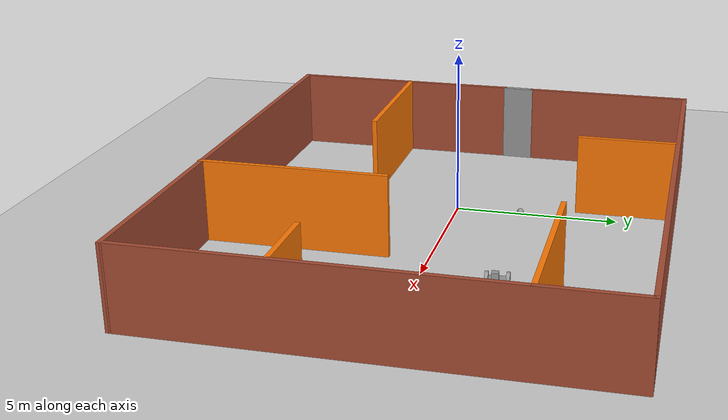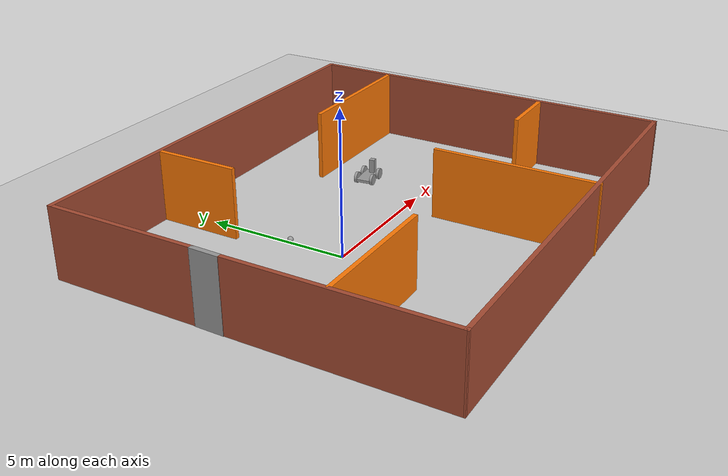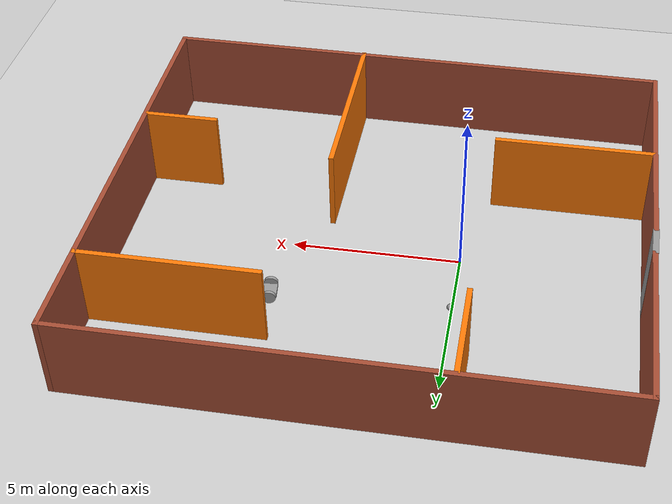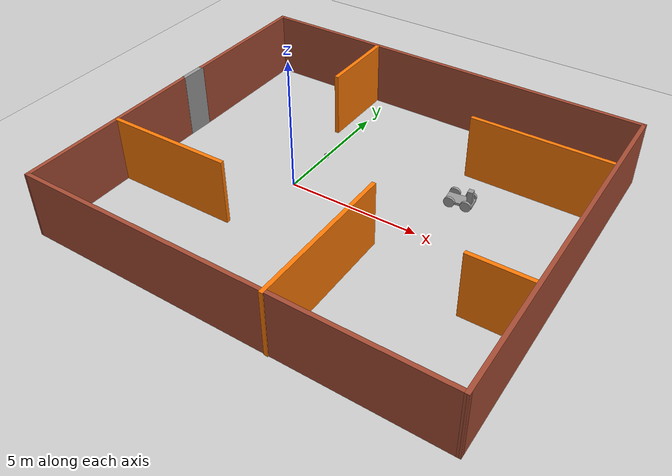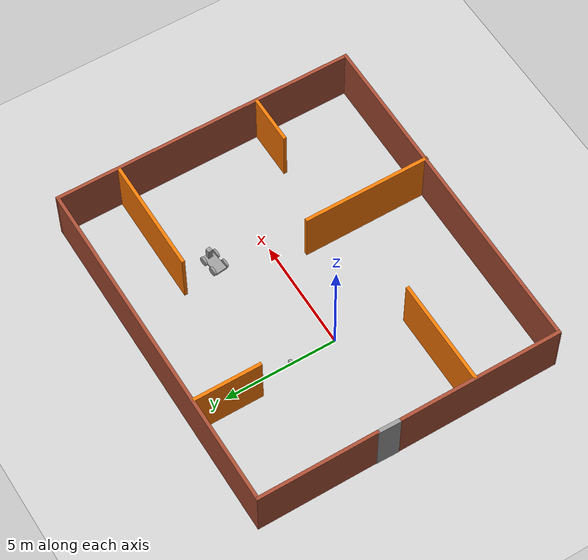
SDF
<sdf version="1.6">
 <world name="default">
  <model name="ground_plane">
   <static>1</static>
   <link name="link">
    <collision name="collision">
     <geometry><plane><normal>0 0 1</normal><size>100 100</size></plane></geometry>
     <surface>
      <contact><collide_bitmask>65535</collide_bitmask></contact>
      <friction><ode><mu>100</mu><mu2>50</mu2></ode></friction>
     </surface>
    </collision>
    <visual name="visual">
     <cast_shadows>0</cast_shadows>
     <geometry><plane><normal>0 0 1</normal><size>100 100</size></plane></geometry>
     <material>
      <script><uri>file://media/materials/scripts/gazebo.material</uri><name>Gazebo/Grey</name></script>
     </material>
    </visual>
   </link>
  </model>
  <model name="robot2">
   <plugin name="modelpush" filename="libmodelpush.so"/>
   <link name="link_0">
    <pose>-0.505429 -0.212278 0.058001 0 -0 0</pose>
    <inertial>
     <mass>1</mass>
     <inertia>
      <ixx>0.166667</ixx>
      <ixy>0</ixy>
      <ixz>0</ixz>
      <iyy>0.166667</iyy>
      <iyz>0</iyz>
      <izz>0.166667</izz>
     </inertia>
    </inertial>
    <visual name="visual">
     <geometry><box><size>1 0.5 0.1</size></box></geometry>
     <material>
      <lighting>1</lighting>
      <script><uri>file://media/materials/scripts/gazebo.material</uri><name>Gazebo/Grey</name></script>
      <shader type="pixel"><normal_map>__default__</normal_map></shader>
      <ambient>0.3 0.3 0.3 1</ambient>
      <diffuse>0.7 0.7 0.7 1</diffuse>
      <specular>0.01 0.01 0.01 1</specular>
      <emissive>0 0 0 1</emissive>
     </material>
    </visual>
    <collision name="collision">
     <geometry><box><size>1 0.5 0.1</size></box></geometry>
     <surface>
      <friction>
       <ode><mu>1</mu><mu2>1</mu2><fdir1>0 0 0</fdir1><slip1>0</slip1><slip2>0</slip2></ode>
       <torsional>
        <coefficient>1</coefficient>
        <patch_radius>0</patch_radius>
        <surface_radius>0</surface_radius>
        <use_patch_radius>1</use_patch_radius>
        <ode><slip>0</slip></ode>
       </torsional>
      </friction>
      <bounce><restitution_coefficient>0</restitution_coefficient><threshold>1e+06</threshold></bounce>
      <contact>
       <collide_without_contact>0</collide_without_contact>
       <collide_without_contact_bitmask>1</collide_without_contact_bitmask>
       <collide_bitmask>1</collide_bitmask>
       <ode>
        <soft_cfm>0</soft_cfm>
        <soft_erp>0.2</soft_erp>
        <kp>1e+13</kp>
        <kd>1</kd>
        <max_vel>0.01</max_vel>
        <min_depth>0</min_depth>
       </ode>
       <bullet>
        <split_impulse>1</split_impulse>
        <split_impulse_penetration_threshold>-0.01</split_impulse_penetration_threshold>
        <soft_cfm>0</soft_cfm>
        <soft_erp>0.2</soft_erp>
        <kp>1e+13</kp>
        <kd>1</kd>
       </bullet>
      </contact>
     </surface>
    </collision>
   </link>
   <link name="link_1">
    <pose>-0.805429 -0.512297 0.102996 1.5707 -0 0</pose>
    <inertial>
     <mass>1</mass>
     <inertia><ixx>0.145833</ixx><ixy>0</ixy><ixz>0</ixz><iyy>0.145833</iyy><iyz>0</iyz><izz>0.125</izz></inertia>
    </inertial>
    <visual name="visual">
     <geometry><cylinder><radius>0.2</radius><length>0.1</length></cylinder></geometry>
     <material>
      <lighting>1</lighting>
      <script><uri>file://media/materials/scripts/gazebo.material</uri><name>Gazebo/Grey</name></script>
      <shader type="pixel"><normal_map>__default__</normal_map></shader>
      <ambient>0.3 0.3 0.3 1</ambient>
      <diffuse>0.7 0.7 0.7 1</diffuse>
      <specular>0.01 0.01 0.01 1</specular>
      <emissive>0 0 0 1</emissive>
     </material>
    </visual>
    <collision name="collision">
     <geometry><cylinder><radius>0.2</radius><length>0.1</length></cylinder></geometry>
     <surface>
      <friction>
       <ode><mu>1</mu><mu2>1</mu2><fdir1>0 0 0</fdir1><slip1>0</slip1><slip2>0</slip2></ode>
       <torsional>
        <coefficient>1</coefficient>
        <patch_radius>0</patch_radius>
        <surface_radius>0</surface_radius>
        <use_patch_radius>1</use_patch_radius>
        <ode><slip>0</slip></ode>
       </torsional>
      </friction>
      <bounce><restitution_coefficient>0</restitution_coefficient><threshold>1e+06</threshold></bounce>
      <contact>
       <collide_without_contact>0</collide_without_contact>
       <collide_without_contact_bitmask>1</collide_without_contact_bitmask>
       <collide_bitmask>1</collide_bitmask>
       <ode>
        <soft_cfm>0</soft_cfm>
        <soft_erp>0.2</soft_erp>
        <kp>1e+13</kp>
        <kd>1</kd>
        <max_vel>0.01</max_vel>
        <min_depth>0</min_depth>
       </ode>
       <bullet>
        <split_impulse>1</split_impulse>
        <split_impulse_penetration_threshold>-0.01</split_impulse_penetration_threshold>
        <soft_cfm>0</soft_cfm>
        <soft_erp>0.2</soft_erp>
        <kp>1e+13</kp>
        <kd>1</kd>
       </bullet>
      </contact>
     </surface>
    </collision>
   </link>
   <link name="link_1_clone">
    <pose>-0.805429 0.087742 0.103001 1.5707 -0 0</pose>
    <inertial>
     <mass>1</mass>
     <inertia><ixx>0.145833</ixx><ixy>0</ixy><ixz>0</ixz><iyy>0.145833</iyy><iyz>0</iyz><izz>0.125</izz></inertia>
    </inertial>
    <visual name="visual">
     <geometry><cylinder><radius>0.2</radius><length>0.1</length></cylinder></geometry>
     <material>
      <lighting>1</lighting>
      <script><uri>file://media/materials/scripts/gazebo.material</uri><name>Gazebo/Grey</name></script>
      <shader type="pixel"><normal_map>__default__</normal_map></shader>
      <ambient>0.3 0.3 0.3 1</ambient>
      <diffuse>0.7 0.7 0.7 1</diffuse>
      <specular>0.01 0.01 0.01 1</specular>
      <emissive>0 0 0 1</emissive>
     </material>
    </visual>
    <collision name="collision">
     <geometry><cylinder><radius>0.2</radius><length>0.1</length></cylinder></geometry>
     <surface>
      <friction>
       <ode><mu>1</mu><mu2>1</mu2><fdir1>0 0 0</fdir1><slip1>0</slip1><slip2>0</slip2></ode>
       <torsional>
        <coefficient>1</coefficient>
        <patch_radius>0</patch_radius>
        <surface_radius>0</surface_radius>
        <use_patch_radius>1</use_patch_radius>
        <ode><slip>0</slip></ode>
       </torsional>
      </friction>
      <bounce><restitution_coefficient>0</restitution_coefficient><threshold>1e+06</threshold></bounce>
      <contact>
       <collide_without_contact>0</collide_without_contact>
       <collide_without_contact_bitmask>1</collide_without_contact_bitmask>
       <collide_bitmask>1</collide_bitmask>
       <ode>
        <soft_cfm>0</soft_cfm>
        <soft_erp>0.2</soft_erp>
        <kp>1e+13</kp>
        <kd>1</kd>
        <max_vel>0.01</max_vel>
        <min_depth>0</min_depth>
       </ode>
       <bullet>
        <split_impulse>1</split_impulse>
        <split_impulse_penetration_threshold>-0.01</split_impulse_penetration_threshold>
        <soft_cfm>0</soft_cfm>
        <soft_erp>0.2</soft_erp>
        <kp>1e+13</kp>
        <kd>1</kd>
       </bullet>
      </contact>
     </surface>
    </collision>
   </link>
   <link name="link_1_clone_0">
    <pose>-0.205429 -0.512297 0.103001 1.5707 -0 0</pose>
    <inertial>
     <mass>1</mass>
     <inertia><ixx>0.145833</ixx><ixy>0</ixy><ixz>0</ixz><iyy>0.145833</iyy><iyz>0</iyz><izz>0.125</izz></inertia>
    </inertial>
    <visual name="visual">
     <geometry><cylinder><radius>0.2</radius><length>0.1</length></cylinder></geometry>
     <material>
      <lighting>1</lighting>
      <script><uri>file://media/materials/scripts/gazebo.material</uri><name>Gazebo/Grey</name></script>
      <shader type="pixel"><normal_map>__default__</normal_map></shader>
      <ambient>0.3 0.3 0.3 1</ambient>
      <diffuse>0.7 0.7 0.7 1</diffuse>
      <specular>0.01 0.01 0.01 1</specular>
      <emissive>0 0 0 1</emissive>
     </material>
    </visual>
    <collision name="collision">
     <geometry><cylinder><radius>0.2</radius><length>0.1</length></cylinder></geometry>
     <surface>
      <friction>
       <ode><mu>1</mu><mu2>1</mu2><fdir1>0 0 0</fdir1><slip1>0</slip1><slip2>0</slip2></ode>
       <torsional>
        <coefficient>1</coefficient>
        <patch_radius>0</patch_radius>
        <surface_radius>0</surface_radius>
        <use_patch_radius>1</use_patch_radius>
        <ode><slip>0</slip></ode>
       </torsional>
      </friction>
      <bounce><restitution_coefficient>0</restitution_coefficient><threshold>1e+06</threshold></bounce>
      <contact>
       <collide_without_contact>0</collide_without_contact>
       <collide_without_contact_bitmask>1</collide_without_contact_bitmask>
       <collide_bitmask>1</collide_bitmask>
       <ode>
        <soft_cfm>0</soft_cfm>
        <soft_erp>0.2</soft_erp>
        <kp>1e+13</kp>
        <kd>1</kd>
        <max_vel>0.01</max_vel>
        <min_depth>0</min_depth>
       </ode>
       <bullet>
        <split_impulse>1</split_impulse>
        <split_impulse_penetration_threshold>-0.01</split_impulse_penetration_threshold>
        <soft_cfm>0</soft_cfm>
        <soft_erp>0.2</soft_erp>
        <kp>1e+13</kp>
        <kd>1</kd>
       </bullet>
      </contact>
     </surface>
    </collision>
   </link>
   <link name="link_1_clone_1">
    <pose>-0.205429 0.087742 0.103001 1.5707 -0 0</pose>
    <inertial>
     <mass>1</mass>
     <inertia><ixx>0.145833</ixx><ixy>0</ixy><ixz>0</ixz><iyy>0.145833</iyy><iyz>0</iyz><izz>0.125</izz></inertia>
    </inertial>
    <visual name="visual">
     <geometry><cylinder><radius>0.2</radius><length>0.1</length></cylinder></geometry>
     <material>
      <lighting>1</lighting>
      <script><uri>file://media/materials/scripts/gazebo.material</uri><name>Gazebo/Grey</name></script>
      <shader type="pixel"><normal_map>__default__</normal_map></shader>
      <ambient>0.3 0.3 0.3 1</ambient>
      <diffuse>0.7 0.7 0.7 1</diffuse>
      <specular>0.01 0.01 0.01 1</specular>
      <emissive>0 0 0 1</emissive>
     </material>
    </visual>
    <collision name="collision">
     <geometry><cylinder><radius>0.2</radius><length>0.1</length></cylinder></geometry>
     <surface>
      <friction>
       <ode><mu>1</mu><mu2>1</mu2><fdir1>0 0 0</fdir1><slip1>0</slip1><slip2>0</slip2></ode>
       <torsional>
        <coefficient>1</coefficient>
        <patch_radius>0</patch_radius>
        <surface_radius>0</surface_radius>
        <use_patch_radius>1</use_patch_radius>
        <ode><slip>0</slip></ode>
       </torsional>
      </friction>
      <bounce><restitution_coefficient>0</restitution_coefficient><threshold>1e+06</threshold></bounce>
      <contact>
       <collide_without_contact>0</collide_without_contact>
       <collide_without_contact_bitmask>1</collide_without_contact_bitmask>
       <collide_bitmask>1</collide_bitmask>
       <ode>
        <soft_cfm>0</soft_cfm>
        <soft_erp>0.2</soft_erp>
        <kp>1e+13</kp>
        <kd>1</kd>
        <max_vel>0.01</max_vel>
        <min_depth>0</min_depth>
       </ode>
       <bullet>
        <split_impulse>1</split_impulse>
        <split_impulse_penetration_threshold>-0.01</split_impulse_penetration_threshold>
        <soft_cfm>0</soft_cfm>
        <soft_erp>0.2</soft_erp>
        <kp>1e+13</kp>
        <kd>1</kd>
       </bullet>
      </contact>
     </surface>
    </collision>
   </link>
   <link name="link_2">
    <pose>-0.145429 -0.232278 0.358001 0 -0 0</pose>
    <inertial>
     <mass>1</mass>
     <inertia>
      <ixx>0.166667</ixx>
      <ixy>0</ixy>
      <ixz>0</ixz>
      <iyy>0.166667</iyy>
      <iyz>0</iyz>
      <izz>0.166667</izz>
     </inertia>
    </inertial>
    <visual name="visual">
     <geometry><box><size>0.2 0.2 0.5</size></box></geometry>
     <material>
      <lighting>1</lighting>
      <script><uri>file://media/materials/scripts/gazebo.material</uri><name>Gazebo/Grey</name></script>
      <shader type="pixel"><normal_map>__default__</normal_map></shader>
      <ambient>0.3 0.3 0.3 1</ambient>
      <diffuse>0.7 0.7 0.7 1</diffuse>
      <specular>0.01 0.01 0.01 1</specular>
      <emissive>0 0 0 1</emissive>
     </material>
    </visual>
    <collision name="collision">
     <geometry><box><size>0.2 0.2 0.5</size></box></geometry>
     <surface>
      <friction>
       <ode><mu>1</mu><mu2>1</mu2><fdir1>0 0 0</fdir1><slip1>0</slip1><slip2>0</slip2></ode>
       <torsional>
        <coefficient>1</coefficient>
        <patch_radius>0</patch_radius>
        <surface_radius>0</surface_radius>
        <use_patch_radius>1</use_patch_radius>
        <ode><slip>0</slip></ode>
       </torsional>
      </friction>
      <bounce><restitution_coefficient>0</restitution_coefficient><threshold>1e+06</threshold></bounce>
      <contact>
       <collide_without_contact>0</collide_without_contact>
       <collide_without_contact_bitmask>1</collide_without_contact_bitmask>
       <collide_bitmask>1</collide_bitmask>
       <ode>
        <soft_cfm>0</soft_cfm>
        <soft_erp>0.2</soft_erp>
        <kp>1e+13</kp>
        <kd>1</kd>
        <max_vel>0.01</max_vel>
        <min_depth>0</min_depth>
       </ode>
       <bullet>
        <split_impulse>1</split_impulse>
        <split_impulse_penetration_threshold>-0.01</split_impulse_penetration_threshold>
        <soft_cfm>0</soft_cfm>
        <soft_erp>0.2</soft_erp>
        <kp>1e+13</kp>
        <kd>1</kd>
       </bullet>
      </contact>
     </surface>
    </collision>
   </link>
   <joint name="link_0_JOINT_1" type="revolute">
    <parent>link_0</parent>
    <child>link_1</child>
    <axis>
     <xyz>1 0 0</xyz>
     <use_parent_model_frame>0</use_parent_model_frame>
     <limit>
      <lower>-1.79769e+308</lower>
      <upper>1.79769e+308</upper>
      <effort>-1</effort>
      <velocity>-1</velocity>
     </limit>
     <dynamics>
      <spring_reference>0</spring_reference>
      <spring_stiffness>0</spring_stiffness>
      <damping>0</damping>
     </dynamics>
    </axis>
    <physics>
     <ode><limit><cfm>0</cfm><erp>0.2</erp></limit><suspension><cfm>0</cfm><erp>0.2</erp></suspension></ode>
    </physics>
   </joint>
   <joint name="link_0_JOINT_3" type="revolute">
    <parent>link_0</parent>
    <child>link_1_clone_0</child>
    <pose>0 0 0 -0.01 0 0</pose>
    <axis>
     <xyz>1 0 0</xyz>
     <use_parent_model_frame>0</use_parent_model_frame>
     <limit>
      <lower>-1.79769e+308</lower>
      <upper>1.79769e+308</upper>
      <effort>-1</effort>
      <velocity>-1</velocity>
     </limit>
     <dynamics>
      <spring_reference>0</spring_reference>
      <spring_stiffness>0</spring_stiffness>
      <damping>0</damping>
     </dynamics>
    </axis>
    <physics>
     <ode><limit><cfm>0</cfm><erp>0.2</erp></limit><suspension><cfm>0</cfm><erp>0.2</erp></suspension></ode>
    </physics>
   </joint>
   <joint name="link_0_JOINT_4" type="revolute">
    <parent>link_0</parent>
    <child>link_1_clone_1</child>
    <axis>
     <xyz>1 0 0</xyz>
     <use_parent_model_frame>0</use_parent_model_frame>
     <limit>
      <lower>-1.79769e+308</lower>
      <upper>1.79769e+308</upper>
      <effort>-1</effort>
      <velocity>-1</velocity>
     </limit>
     <dynamics>
      <spring_reference>0</spring_reference>
      <spring_stiffness>0</spring_stiffness>
      <damping>0</damping>
     </dynamics>
    </axis>
    <physics>
     <ode><limit><cfm>0</cfm><erp>0.2</erp></limit><suspension><cfm>0</cfm><erp>0.2</erp></suspension></ode>
    </physics>
   </joint>
   <joint name="link_0_JOINT_6" type="revolute">
    <parent>link_0</parent>
    <child>link_2</child>
    <axis>
     <xyz>1 0 0</xyz>
     <use_parent_model_frame>0</use_parent_model_frame>
     <limit>
      <lower>-1.79769e+308</lower>
      <upper>1.79769e+308</upper>
      <effort>-1</effort>
      <velocity>-1</velocity>
     </limit>
     <dynamics>
      <spring_reference>0</spring_reference>
      <spring_stiffness>0</spring_stiffness>
      <damping>0</damping>
     </dynamics>
    </axis>
    <physics>
     <ode><limit><cfm>0</cfm><erp>0.2</erp></limit><suspension><cfm>0</cfm><erp>0.2</erp></suspension></ode>
    </physics>
   </joint>
   <joint name="link_1_JOINT_2" type="revolute">
    <parent>link_0</parent>
    <child>link_1_clone</child>
    <axis>
     <xyz>1 0 0</xyz>
     <use_parent_model_frame>0</use_parent_model_frame>
     <limit>
      <lower>-1.79769e+308</lower>
      <upper>1.79769e+308</upper>
      <effort>-1</effort>
      <velocity>-1</velocity>
     </limit>
     <dynamics>
      <spring_reference>0</spring_reference>
      <spring_stiffness>0</spring_stiffness>
      <damping>0</damping>
     </dynamics>
    </axis>
    <physics>
     <ode><limit><cfm>0</cfm><erp>0.2</erp></limit><suspension><cfm>0</cfm><erp>0.2</erp></suspension></ode>
    </physics>
   </joint>
   <static>0</static>
   <pose>5.99955 2.53093 0.096999 -8e-06 1e-06 0.112113</pose>
  </model>
  <model name="Building2">
   <pose>2.3755 -0.06671 0 0 -0 0</pose>
   <link name="Door_0">
    <collision name="Door_0_Collision">
     <geometry><box><size>1 0.17 2.5</size></box></geometry>
     <pose>0 0 1.25 0 -0 0</pose>
    </collision>
    <visual name="Door_0_Visual">
     <pose>0 0 1.25 0 -0 0</pose>
     <geometry><box><size>1 0.17 2.5</size></box></geometry>
     <material>
      <script><uri>file://media/materials/scripts/gazebo.material</uri><name>Gazebo/Grey</name></script>
     </material>
    </visual>
    <pose>-7.7335 1.06671 0 0 0 -1.5903</pose>
   </link>
   <link name="Wall_0">
    <collision name="Wall_0_Collision">
     <geometry><box><size>7.387 0.15 2.5</size></box></geometry>
     <pose>0 0 1.25 0 -0 0</pose>
    </collision>
    <visual name="Wall_0_Visual">
     <pose>0 0 1.25 0 -0 0</pose>
     <geometry><box><size>7.387 0.15 2.5</size></box></geometry>
     <material>
      <script><uri>file://media/materials/scripts/gazebo.material</uri><name>Gazebo/Bricks</name></script>
      <ambient>1 1 1 1</ambient>
     </material>
     <meta><layer>0</layer></meta>
    </visual>
    <pose>-7.7395 -3.05179 0 0 0 -1.5708</pose>
   </link>
   <link name="Wall_1">
    <collision name="Wall_1_Collision">
     <geometry><box><size>15.6291 0.15 2.5</size></box></geometry>
     <pose>0 0 1.25 0 -0 0</pose>
    </collision>
    <visual name="Wall_1_Visual">
     <pose>0 0 1.25 0 -0 0</pose>
     <geometry><box><size>15.6291 0.15 2.5</size></box></geometry>
     <material>
      <script><uri>file://media/materials/scripts/gazebo.material</uri><name>Gazebo/Bricks</name></script>
      <ambient>1 1 1 1</ambient>
     </material>
     <meta><layer>0</layer></meta>
    </visual>
    <pose>0 -6.71629 0 0 0 -0.005943</pose>
   </link>
   <link name="Wall_11">
    <collision name="Wall_11_Collision">
     <geometry><box><size>5.75 0.15 2.5</size></box></geometry>
     <pose>0 0 1.25 0 -0 0</pose>
    </collision>
    <visual name="Wall_11_Visual">
     <pose>0 0 1.25 0 -0 0</pose>
     <geometry><box><size>5.75 0.15 2.5</size></box></geometry>
     <material>
      <script><uri>file://media/materials/scripts/gazebo.material</uri><name>Gazebo/Grey</name></script>
      <ambient>0.996078 0.47451 0.0196078 1</ambient>
     </material>
     <meta><layer>0</layer></meta>
    </visual>
    <pose>1.6725 -3.95929 0 0 -0 1.5708</pose>
   </link>
   <link name="Wall_14">
    <collision name="Wall_14_Collision">
     <geometry><box><size>2.25 0.15 2.5</size></box></geometry>
     <pose>0 0 1.25 0 -0 0</pose>
    </collision>
    <visual name="Wall_14_Visual">
     <pose>0 0 1.25 0 -0 0</pose>
     <geometry><box><size>2.25 0.15 2.5</size></box></geometry>
     <material>
      <script><uri>file://media/materials/scripts/gazebo.material</uri><name>Gazebo/Grey</name></script>
      <ambient>0.996078 0.47451 0.0196078 1</ambient>
     </material>
     <meta><layer>0</layer></meta>
    </visual>
    <pose>6.5995 -2.43729 0 0 -0 3.14159</pose>
   </link>
   <link name="Wall_17">
    <collision name="Wall_17_Collision">
     <geometry><box><size>5.25 0.15 2.5</size></box></geometry>
     <pose>0 0 1.25 0 -0 0</pose>
    </collision>
    <visual name="Wall_17_Visual">
     <pose>0 0 1.25 0 -0 0</pose>
     <geometry><box><size>5.25 0.15 2.5</size></box></geometry>
     <material>
      <script><uri>file://media/materials/scripts/gazebo.material</uri><name>Gazebo/Grey</name></script>
      <ambient>0.996078 0.47451 0.0196078 1</ambient>
     </material>
     <meta><layer>0</layer></meta>
    </visual>
    <pose>5.1575 4.00271 0 0 -0 3.14159</pose>
   </link>
   <link name="Wall_2">
    <collision name="Wall_2_Collision">
     <geometry><box><size>13.669 0.15 2.5</size></box></geometry>
     <pose>0 0 1.25 0 -0 0</pose>
    </collision>
    <visual name="Wall_2_Visual">
     <pose>0 0 1.25 0 -0 0</pose>
     <geometry><box><size>13.669 0.15 2.5</size></box></geometry>
     <material>
      <script><uri>file://media/materials/scripts/gazebo.material</uri><name>Gazebo/Bricks</name></script>
      <ambient>1 1 1 1</ambient>
     </material>
     <meta><layer>0</layer></meta>
    </visual>
    <pose>7.7395 -0.002793 0 0 -0 1.5708</pose>
   </link>
   <link name="Wall_3">
    <collision name="Wall_3_Collision">
     <geometry><box><size>15.6077 0.15 2.5</size></box></geometry>
     <pose>0 0 1.25 0 -0 0</pose>
    </collision>
    <visual name="Wall_3_Visual">
     <pose>0 0 1.25 0 -0 0</pose>
     <geometry><box><size>15.6077 0.15 2.5</size></box></geometry>
     <material>
      <script><uri>file://media/materials/scripts/gazebo.material</uri><name>Gazebo/Bricks</name></script>
      <ambient>1 1 1 1</ambient>
     </material>
     <meta><layer>0</layer></meta>
    </visual>
    <pose>0.0105 6.75971 0 0 -0 3.1412</pose>
   </link>
   <link name="Wall_4">
    <collision name="Wall_4_Collision">
     <geometry><box><size>5.346 0.15 2.5</size></box></geometry>
     <pose>0 0 1.25 0 -0 0</pose>
    </collision>
    <visual name="Wall_4_Visual">
     <pose>0 0 1.25 0 -0 0</pose>
     <geometry><box><size>5.346 0.15 2.5</size></box></geometry>
     <material>
      <script><uri>file://media/materials/scripts/gazebo.material</uri><name>Gazebo/Bricks</name></script>
      <ambient>1 1 1 1</ambient>
     </material>
     <meta><layer>0</layer></meta>
    </visual>
    <pose>-7.7185 4.16471 0 0 0 -1.5708</pose>
   </link>
   <link name="Wall_7">
    <collision name="Wall_7_Collision">
     <geometry><box><size>4.75 0.15 2.5</size></box></geometry>
     <pose>0 0 1.25 0 -0 0</pose>
    </collision>
    <visual name="Wall_7_Visual">
     <pose>0 0 1.25 0 -0 0</pose>
     <geometry><box><size>4.75 0.15 2.5</size></box></geometry>
     <material>
      <script><uri>file://media/materials/scripts/gazebo.material</uri><name>Gazebo/Grey</name></script>
      <ambient>0.996078 0.47451 0.0196078 1</ambient>
     </material>
     <meta><layer>0</layer></meta>
    </visual>
    <pose>-5.3805 -2.82729 0 0 -0 0</pose>
   </link>
   <link name="Wall_9">
    <collision name="Wall_9_Collision">
     <geometry><box><size>3 0.15 2.5</size></box></geometry>
     <pose>0 0 1.25 0 -0 0</pose>
    </collision>
    <visual name="Wall_9_Visual">
     <pose>0 0 1.25 0 -0 0</pose>
     <geometry><box><size>3 0.15 2.5</size></box></geometry>
     <material>
      <script><uri>file://media/materials/scripts/gazebo.material</uri><name>Gazebo/Grey</name></script>
      <ambient>0.996078 0.47451 0.0196078 1</ambient>
     </material>
     <meta><layer>0</layer></meta>
    </visual>
    <pose>-2.9545 5.23471 0 0 0 -1.5708</pose>
   </link>
   <static>1</static>
  </model>
  <model name="dxm"><pose>5.17006 2.19967 0 0 -0 0</pose><static>1</static></model>
  <model name="my_ball">
   <link name="link_0">
    <inertial>
     <mass>1</mass>
     <inertia><ixx>0.1</ixx><ixy>0</ixy><ixz>0</ixz><iyy>0.1</iyy><iyz>0</iyz><izz>0.1</izz></inertia>
    </inertial>
    <visual name="visual">
     <geometry><sphere><radius>0.1</radius></sphere></geometry>
     <material>
      <lighting>1</lighting>
      <script><uri>file://media/materials/scripts/gazebo.material</uri><name>Gazebo/Grey</name></script>
      <shader type="pixel"><normal_map>__default__</normal_map></shader>
      <ambient>1 1 1 1</ambient>
      <diffuse>1 1 1 1</diffuse>
      <specular>1 1 1 1</specular>
      <emissive>1 1 1 1</emissive>
     </material>
    </visual>
    <collision name="collision">
     <geometry><sphere><radius>0.1</radius></sphere></geometry>
     <surface>
      <friction>
       <ode><mu>1</mu><mu2>1</mu2><fdir1>0 0 0</fdir1><slip1>0</slip1><slip2>0</slip2></ode>
       <torsional>
        <coefficient>1</coefficient>
        <patch_radius>0</patch_radius>
        <surface_radius>0</surface_radius>
        <use_patch_radius>1</use_patch_radius>
        <ode><slip>0</slip></ode>
       </torsional>
      </friction>
      <bounce><restitution_coefficient>0</restitution_coefficient><threshold>1e+06</threshold></bounce>
      <contact>
       <collide_without_contact>0</collide_without_contact>
       <collide_without_contact_bitmask>1</collide_without_contact_bitmask>
       <collide_bitmask>1</collide_bitmask>
       <ode>
        <soft_cfm>0</soft_cfm>
        <soft_erp>0.2</soft_erp>
        <kp>1e+13</kp>
        <kd>1</kd>
        <max_vel>0.01</max_vel>
        <min_depth>0</min_depth>
       </ode>
       <bullet>
        <split_impulse>1</split_impulse>
        <split_impulse_penetration_threshold>-0.01</split_impulse_penetration_threshold>
        <soft_cfm>0</soft_cfm>
        <soft_erp>0.2</soft_erp>
        <kp>1e+13</kp>
        <kd>1</kd>
       </bullet>
      </contact>
     </surface>
    </collision>
   </link>
   <static>0</static>
   <pose>0.055261 2.01467 0.1 0 -0 0</pose>
  </model>
 </world>
</sdf>
